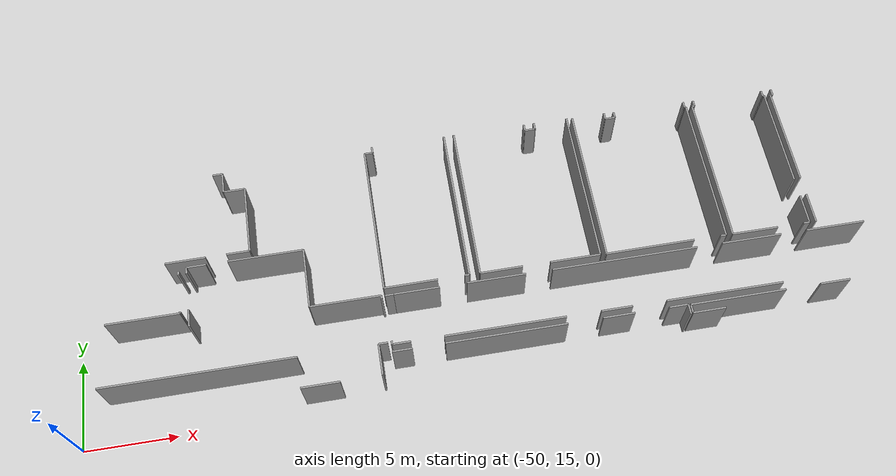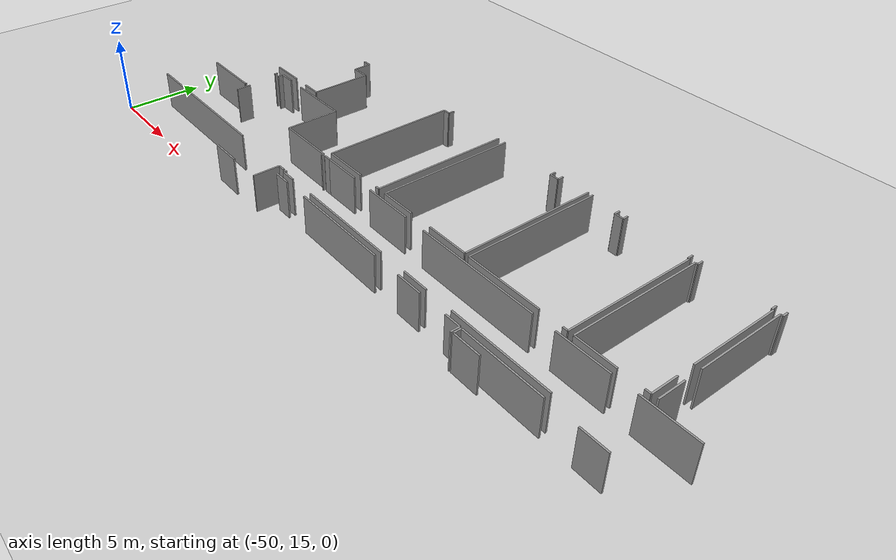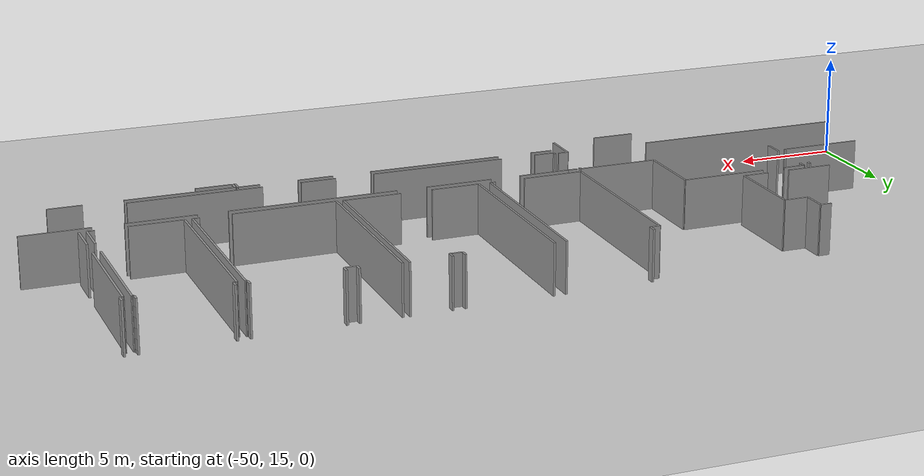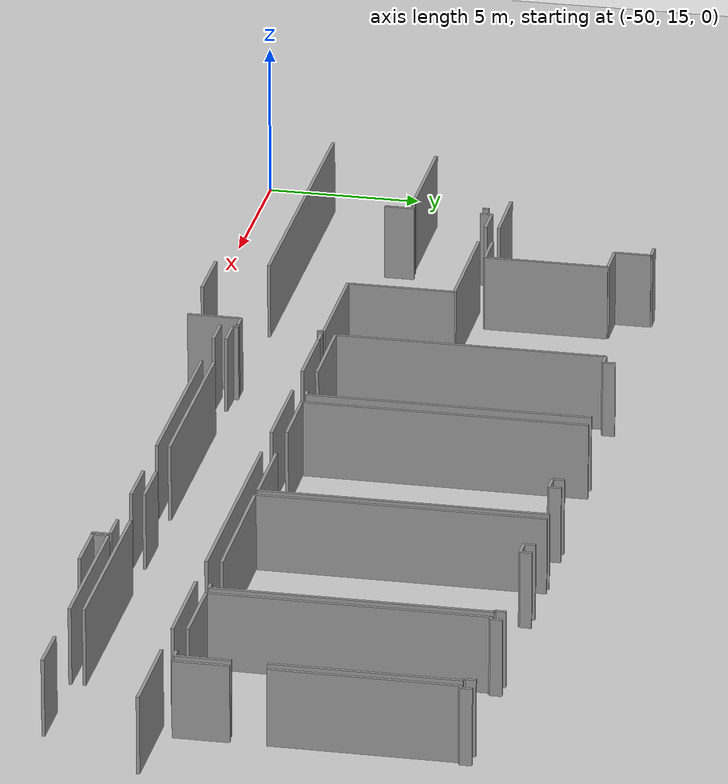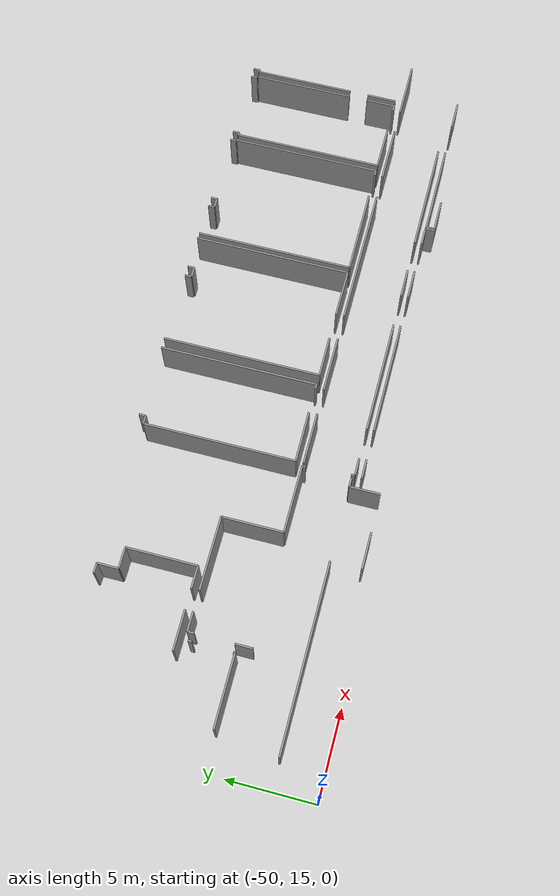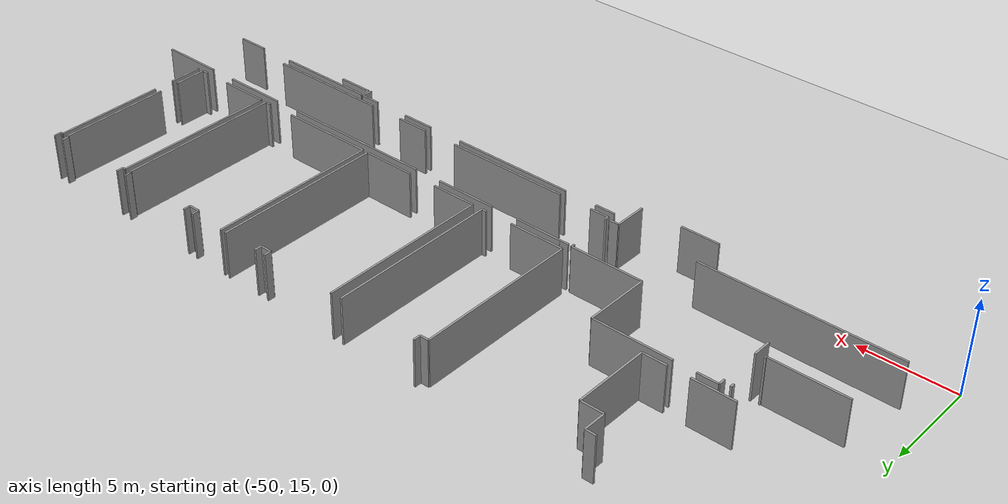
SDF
<sdf version="1.6">
 <world name="default">
  <model name="ground_plane">
   <static>1</static>
   <link name="link">
    <collision name="collision">
     <geometry><plane><normal>0 0 1</normal><size>100 100</size></plane></geometry>
     <surface><friction><ode><mu>100</mu><mu2>50</mu2></ode></friction></surface>
    </collision>
    <visual name="visual">
     <cast_shadows>0</cast_shadows>
     <geometry><plane><normal>0 0 1</normal><size>100 100</size></plane></geometry>
     <material>
      <script><uri>file://media/materials/scripts/gazebo.material</uri><name>Gazebo/Grey</name></script>
     </material>
    </visual>
   </link>
  </model>
  <model name="50010536_PLAN3">
   <static>1</static>
   <link name="Wall_196">
    <collision name="Wall_196_Collision">
     <geometry><box><size>0.553090181887 0.1 2.5</size></box></geometry>
     <pose>0.276545090944 0 1.25 0 0 0</pose>
    </collision>
    <visual name="Wall_196_Visual">
     <pose>0.276545090944 0 1.25 0 0 0</pose>
     <geometry><box><size>0.553090181887 0.1 2.5</size></box></geometry>
     <material>
      <script><uri>file://media/materials/scripts/gazebo.material</uri><name>Gazebo/Grey</name></script>
      <ambient>1 1 1 1</ambient>
     </material>
    </visual>
    <pose>60.6047677999 -0.392089642256 0 0 0 0.0</pose>
   </link>
   <link name="Wall_197">
    <collision name="Wall_197_Collision">
     <geometry><box><size>1.1926229248 0.1 2.5</size></box></geometry>
     <pose>0.5963114624 0 1.25 0 0 0</pose>
    </collision>
    <visual name="Wall_197_Visual">
     <pose>0.5963114624 0 1.25 0 0 0</pose>
     <geometry><box><size>1.1926229248 0.1 2.5</size></box></geometry>
     <material>
      <script><uri>file://media/materials/scripts/gazebo.material</uri><name>Gazebo/Grey</name></script>
      <ambient>1 1 1 1</ambient>
     </material>
    </visual>
    <pose>61.1578579818 -0.392089642256 0 0 0 -1.57079632679</pose>
   </link>
   <link name="Wall_198">
    <collision name="Wall_198_Collision">
     <geometry><box><size>1.19861600482 0.1 2.5</size></box></geometry>
     <pose>0.599308002412 0 1.25 0 0 0</pose>
    </collision>
    <visual name="Wall_198_Visual">
     <pose>0.599308002412 0 1.25 0 0 0</pose>
     <geometry><box><size>1.19861600482 0.1 2.5</size></box></geometry>
     <material>
      <script><uri>file://media/materials/scripts/gazebo.material</uri><name>Gazebo/Grey</name></script>
      <ambient>1 1 1 1</ambient>
     </material>
    </visual>
    <pose>61.1578579818 -1.58471256706 0 0 0 0.0</pose>
   </link>
   <link name="Wall_199">
    <collision name="Wall_199_Collision">
     <geometry><box><size>3.99807002508 0.1 2.5</size></box></geometry>
     <pose>1.99903501254 0 1.25 0 0 0</pose>
    </collision>
    <visual name="Wall_199_Visual">
     <pose>1.99903501254 0 1.25 0 0 0</pose>
     <geometry><box><size>3.99807002508 0.1 2.5</size></box></geometry>
     <material>
      <script><uri>file://media/materials/scripts/gazebo.material</uri><name>Gazebo/Grey</name></script>
      <ambient>1 1 1 1</ambient>
     </material>
    </visual>
    <pose>62.3564739866 -1.58471256706 0 0 0 -1.57079632679</pose>
   </link>
   <link name="Wall_200">
    <collision name="Wall_200_Collision">
     <geometry><box><size>1.2745452814 0.1 2.5</size></box></geometry>
     <pose>0.637272640701 0 1.25 0 0 0</pose>
    </collision>
    <visual name="Wall_200_Visual">
     <pose>0.637272640701 0 1.25 0 0 0</pose>
     <geometry><box><size>1.2745452814 0.1 2.5</size></box></geometry>
     <material>
      <script><uri>file://media/materials/scripts/gazebo.material</uri><name>Gazebo/Grey</name></script>
      <ambient>1 1 1 1</ambient>
     </material>
    </visual>
    <pose>62.3564739866 -5.58278259213 0 0 0 3.14159265359</pose>
   </link>
   <link name="Wall_201">
    <collision name="Wall_201_Collision">
     <geometry><box><size>2.22815080388 0.1 2.5</size></box></geometry>
     <pose>1.11407540194 0 1.25 0 0 0</pose>
    </collision>
    <visual name="Wall_201_Visual">
     <pose>1.11407540194 0 1.25 0 0 0</pose>
     <geometry><box><size>2.22815080388 0.1 2.5</size></box></geometry>
     <material>
      <script><uri>file://media/materials/scripts/gazebo.material</uri><name>Gazebo/Grey</name></script>
      <ambient>1 1 1 1</ambient>
     </material>
    </visual>
    <pose>59.9401961718 -5.58278259213 0 0 0 -3.13519884968</pose>
   </link>
   <link name="Wall_204">
    <collision name="Wall_204_Collision">
     <geometry><box><size>0.209757800844 0.1 2.5</size></box></geometry>
     <pose>0.104878900422 0 1.25 0 0 0</pose>
    </collision>
    <visual name="Wall_204_Visual">
     <pose>0.104878900422 0 1.25 0 0 0</pose>
     <geometry><box><size>0.209757800844 0.1 2.5</size></box></geometry>
     <material>
      <script><uri>file://media/materials/scripts/gazebo.material</uri><name>Gazebo/Grey</name></script>
      <ambient>1 1 1 1</ambient>
     </material>
    </visual>
    <pose>58.4241500809 -6.18942957814 0 0 0 -1.57079632679</pose>
   </link>
   <link name="Wall_205">
    <collision name="Wall_205_Collision">
     <geometry><box><size>0.093959305463 0.1 2.5</size></box></geometry>
     <pose>0.0469796527315 0 1.25 0 0 0</pose>
    </collision>
    <visual name="Wall_205_Visual">
     <pose>0.0469796527315 0 1.25 0 0 0</pose>
     <geometry><box><size>0.093959305463 0.1 2.5</size></box></geometry>
     <material>
      <script><uri>file://media/materials/scripts/gazebo.material</uri><name>Gazebo/Grey</name></script>
      <ambient>1 1 1 1</ambient>
     </material>
    </visual>
    <pose>58.4241500809 -8.60621528108 0 0 0 -1.57079632679</pose>
   </link>
   <link name="Wall_206">
    <collision name="Wall_206_Collision">
     <geometry><box><size>3.99378070356 0.1 2.5</size></box></geometry>
     <pose>1.99689035178 0 1.25 0 0 0</pose>
    </collision>
    <visual name="Wall_206_Visual">
     <pose>1.99689035178 0 1.25 0 0 0</pose>
     <geometry><box><size>3.99378070356 0.1 2.5</size></box></geometry>
     <material>
      <script><uri>file://media/materials/scripts/gazebo.material</uri><name>Gazebo/Grey</name></script>
      <ambient>1 1 1 1</ambient>
     </material>
    </visual>
    <pose>58.4241500809 -8.70017458655 0 0 0 -3.14051171041</pose>
   </link>
   <link name="Wall_208">
    <collision name="Wall_208_Collision">
     <geometry><box><size>0.97387550392 0.1 2.5</size></box></geometry>
     <pose>0.48693775196 0 1.25 0 0 0</pose>
    </collision>
    <visual name="Wall_208_Visual">
     <pose>0.48693775196 0 1.25 0 0 0</pose>
     <geometry><box><size>0.97387550392 0.1 2.5</size></box></geometry>
     <material>
      <script><uri>file://media/materials/scripts/gazebo.material</uri><name>Gazebo/Grey</name></script>
      <ambient>1 1 1 1</ambient>
     </material>
    </visual>
    <pose>58.8649969844 -9.53768212551 0 0 0 1.57079632679</pose>
   </link>
   <link name="Wall_209">
    <collision name="Wall_209_Collision">
     <geometry><box><size>0.373196203536 0.1 2.5</size></box></geometry>
     <pose>0.186598101768 0 1.25 0 0 0</pose>
    </collision>
    <visual name="Wall_209_Visual">
     <pose>0.186598101768 0 1.25 0 0 0</pose>
     <geometry><box><size>0.373196203536 0.1 2.5</size></box></geometry>
     <material>
      <script><uri>file://media/materials/scripts/gazebo.material</uri><name>Gazebo/Grey</name></script>
      <ambient>1 1 1 1</ambient>
     </material>
    </visual>
    <pose>58.8649969844 -6.39385455353 0 0 0 1.57079632679</pose>
   </link>
   <link name="Wall_210">
    <collision name="Wall_210_Collision">
     <geometry><box><size>1.08332539758 0.1 2.5</size></box></geometry>
     <pose>0.541662698791 0 1.25 0 0 0</pose>
    </collision>
    <visual name="Wall_210_Visual">
     <pose>0.541662698791 0 1.25 0 0 0</pose>
     <geometry><box><size>1.08332539758 0.1 2.5</size></box></geometry>
     <material>
      <script><uri>file://media/materials/scripts/gazebo.material</uri><name>Gazebo/Grey</name></script>
      <ambient>1 1 1 1</ambient>
     </material>
    </visual>
    <pose>58.8649969844 -6.02065835 0 0 0 0.0</pose>
   </link>
   <link name="Wall_211">
    <collision name="Wall_211_Collision">
     <geometry><box><size>4.15782623877 0.1 2.5</size></box></geometry>
     <pose>2.07891311939 0 1.25 0 0 0</pose>
    </collision>
    <visual name="Wall_211_Visual">
     <pose>2.07891311939 0 1.25 0 0 0</pose>
     <geometry><box><size>4.15782623877 0.1 2.5</size></box></geometry>
     <material>
      <script><uri>file://media/materials/scripts/gazebo.material</uri><name>Gazebo/Grey</name></script>
      <ambient>1 1 1 1</ambient>
     </material>
    </visual>
    <pose>61.1151953782 -6.02065835 0 0 0 0.0</pose>
   </link>
   <link name="Wall_212">
    <collision name="Wall_212_Collision">
     <geometry><box><size>3.4568390312 0.1 2.5</size></box></geometry>
     <pose>1.7284195156 0 1.25 0 0 0</pose>
    </collision>
    <visual name="Wall_212_Visual">
     <pose>1.7284195156 0 1.25 0 0 0</pose>
     <geometry><box><size>3.4568390312 0.1 2.5</size></box></geometry>
     <material>
      <script><uri>file://media/materials/scripts/gazebo.material</uri><name>Gazebo/Grey</name></script>
      <ambient>1 1 1 1</ambient>
     </material>
    </visual>
    <pose>65.273021617 -6.02065835 0 0 0 -1.57079632679</pose>
   </link>
   <link name="Wall_213">
    <collision name="Wall_213_Collision">
     <geometry><box><size>3.87239310542 0.1 2.5</size></box></geometry>
     <pose>1.93619655271 0 1.25 0 0 0</pose>
    </collision>
    <visual name="Wall_213_Visual">
     <pose>1.93619655271 0 1.25 0 0 0</pose>
     <geometry><box><size>3.87239310542 0.1 2.5</size></box></geometry>
     <material>
      <script><uri>file://media/materials/scripts/gazebo.material</uri><name>Gazebo/Grey</name></script>
      <ambient>1 1 1 1</ambient>
     </material>
    </visual>
    <pose>65.273021617 -9.4774973812 0 0 0 0.0</pose>
   </link>
   <link name="Wall_214">
    <collision name="Wall_214_Collision">
     <geometry><box><size>0.196806653335 0.1 2.5</size></box></geometry>
     <pose>0.0984033266673 0 1.25 0 0 0</pose>
    </collision>
    <visual name="Wall_214_Visual">
     <pose>0.0984033266673 0 1.25 0 0 0</pose>
     <geometry><box><size>0.196806653335 0.1 2.5</size></box></geometry>
     <material>
      <script><uri>file://media/materials/scripts/gazebo.material</uri><name>Gazebo/Grey</name></script>
      <ambient>1 1 1 1</ambient>
     </material>
    </visual>
    <pose>69.1454147224 -9.4774973812 0 0 0 -1.57079632679</pose>
   </link>
   <link name="Wall_215">
    <collision name="Wall_215_Collision">
     <geometry><box><size>0.49442910199 0.1 2.5</size></box></geometry>
     <pose>0.247214550995 0 1.25 0 0 0</pose>
    </collision>
    <visual name="Wall_215_Visual">
     <pose>0.247214550995 0 1.25 0 0 0</pose>
     <geometry><box><size>0.49442910199 0.1 2.5</size></box></geometry>
     <material>
      <script><uri>file://media/materials/scripts/gazebo.material</uri><name>Gazebo/Grey</name></script>
      <ambient>1 1 1 1</ambient>
     </material>
    </visual>
    <pose>69.1454147224 -12.2340602482 0 0 0 3.14159265359</pose>
   </link>
   <link name="Wall_216">
    <collision name="Wall_216_Collision">
     <geometry><box><size>1.73342221376 0.1 2.5</size></box></geometry>
     <pose>0.866711106879 0 1.25 0 0 0</pose>
    </collision>
    <visual name="Wall_216_Visual">
     <pose>0.866711106879 0 1.25 0 0 0</pose>
     <geometry><box><size>1.73342221376 0.1 2.5</size></box></geometry>
     <material>
      <script><uri>file://media/materials/scripts/gazebo.material</uri><name>Gazebo/Grey</name></script>
      <ambient>1 1 1 1</ambient>
     </material>
    </visual>
    <pose>68.6509856204 -12.2340602482 0 0 0 -1.57079632679</pose>
   </link>
   <link name="Wall_217">
    <collision name="Wall_217_Collision">
     <geometry><box><size>2.08157953211 0.1 2.5</size></box></geometry>
     <pose>1.04078976605 0 1.25 0 0 0</pose>
    </collision>
    <visual name="Wall_217_Visual">
     <pose>1.04078976605 0 1.25 0 0 0</pose>
     <geometry><box><size>2.08157953211 0.1 2.5</size></box></geometry>
     <material>
      <script><uri>file://media/materials/scripts/gazebo.material</uri><name>Gazebo/Grey</name></script>
      <ambient>1 1 1 1</ambient>
     </material>
    </visual>
    <pose>66.4454813827 -13.967482462 0 0 0 3.14159265359</pose>
   </link>
   <link name="Wall_219">
    <collision name="Wall_219_Collision">
     <geometry><box><size>10.4142462623 0.1 2.5</size></box></geometry>
     <pose>5.20712313113 0 1.25 0 0 0</pose>
    </collision>
    <visual name="Wall_219_Visual">
     <pose>5.20712313113 0 1.25 0 0 0</pose>
     <geometry><box><size>10.4142462623 0.1 2.5</size></box></geometry>
     <material>
      <script><uri>file://media/materials/scripts/gazebo.material</uri><name>Gazebo/Grey</name></script>
      <ambient>1 1 1 1</ambient>
     </material>
    </visual>
    <pose>64.3639018506 -12.2327905279 0 0 0 3.14159265359</pose>
   </link>
   <link name="Wall_444">
    <collision name="Wall_444_Collision">
     <geometry><box><size>8.65192521347 0.1 2.5</size></box></geometry>
     <pose>4.32596260674 0 1.25 0 0 0</pose>
    </collision>
    <visual name="Wall_444_Visual">
     <pose>4.32596260674 0 1.25 0 0 0</pose>
     <geometry><box><size>8.65192521347 0.1 2.5</size></box></geometry>
     <material>
      <script><uri>file://media/materials/scripts/gazebo.material</uri><name>Gazebo/Grey</name></script>
      <ambient>1 1 1 1</ambient>
     </material>
    </visual>
    <pose>69.3455226486 -9.06661587785 0 0 0 1.57079632679</pose>
   </link>
   <link name="Wall_445">
    <collision name="Wall_445_Collision">
     <geometry><box><size>0.465225534076 0.1 2.5</size></box></geometry>
     <pose>0.232612767038 0 1.25 0 0 0</pose>
    </collision>
    <visual name="Wall_445_Visual">
     <pose>0.232612767038 0 1.25 0 0 0</pose>
     <geometry><box><size>0.465225534076 0.1 2.5</size></box></geometry>
     <material>
      <script><uri>file://media/materials/scripts/gazebo.material</uri><name>Gazebo/Grey</name></script>
      <ambient>1 1 1 1</ambient>
     </material>
    </visual>
    <pose>69.3455226486 -0.414690664381 0 0 0 0.0</pose>
   </link>
   <link name="Wall_446">
    <collision name="Wall_446_Collision">
     <geometry><box><size>0.391175443609 0.1 2.5</size></box></geometry>
     <pose>0.195587721804 0 1.25 0 0 0</pose>
    </collision>
    <visual name="Wall_446_Visual">
     <pose>0.195587721804 0 1.25 0 0 0</pose>
     <geometry><box><size>0.391175443609 0.1 2.5</size></box></geometry>
     <material>
      <script><uri>file://media/materials/scripts/gazebo.material</uri><name>Gazebo/Grey</name></script>
      <ambient>1 1 1 1</ambient>
     </material>
    </visual>
    <pose>69.8107481827 -0.414690664381 0 0 0 1.57079632679</pose>
   </link>
   <link name="Wall_447">
    <collision name="Wall_447_Collision">
     <geometry><box><size>9.02761006888 0.1 2.5</size></box></geometry>
     <pose>4.51380503444 0 1.25 0 0 0</pose>
    </collision>
    <visual name="Wall_447_Visual">
     <pose>4.51380503444 0 1.25 0 0 0</pose>
     <geometry><box><size>9.02761006888 0.1 2.5</size></box></geometry>
     <material>
      <script><uri>file://media/materials/scripts/gazebo.material</uri><name>Gazebo/Grey</name></script>
      <ambient>1 1 1 1</ambient>
     </material>
    </visual>
    <pose>74.0386629845 -0.0235152207726 0 0 0 -1.57079632679</pose>
   </link>
   <link name="Wall_448">
    <collision name="Wall_448_Collision">
     <geometry><box><size>0.255467733232 0.1 2.5</size></box></geometry>
     <pose>0.127733866616 0 1.25 0 0 0</pose>
    </collision>
    <visual name="Wall_448_Visual">
     <pose>0.127733866616 0 1.25 0 0 0</pose>
     <geometry><box><size>0.255467733232 0.1 2.5</size></box></geometry>
     <material>
      <script><uri>file://media/materials/scripts/gazebo.material</uri><name>Gazebo/Grey</name></script>
      <ambient>1 1 1 1</ambient>
     </material>
    </visual>
    <pose>74.0386629845 -9.05112528965 0 0 0 3.14159265359</pose>
   </link>
   <link name="Wall_449">
    <collision name="Wall_449_Collision">
     <geometry><box><size>2.95188650114 0.1 2.5</size></box></geometry>
     <pose>1.47594325057 0 1.25 0 0 0</pose>
    </collision>
    <visual name="Wall_449_Visual">
     <pose>1.47594325057 0 1.25 0 0 0</pose>
     <geometry><box><size>2.95188650114 0.1 2.5</size></box></geometry>
     <material>
      <script><uri>file://media/materials/scripts/gazebo.material</uri><name>Gazebo/Grey</name></script>
      <ambient>1 1 1 1</ambient>
     </material>
    </visual>
    <pose>72.2973685046 -9.05112528965 0 0 0 -3.13634493851</pose>
   </link>
   <link name="Wall_450">
    <collision name="Wall_450_Collision">
     <geometry><box><size>9.05209027712 0.1 2.5</size></box></geometry>
     <pose>4.52604513856 0 1.25 0 0 0</pose>
    </collision>
    <visual name="Wall_450_Visual">
     <pose>4.52604513856 0 1.25 0 0 0</pose>
     <geometry><box><size>9.05209027712 0.1 2.5</size></box></geometry>
     <material>
      <script><uri>file://media/materials/scripts/gazebo.material</uri><name>Gazebo/Grey</name></script>
      <ambient>1 1 1 1</ambient>
     </material>
    </visual>
    <pose>74.6252737834 -9.06356854903 0 0 0 1.57079632679</pose>
   </link>
   <link name="Wall_451">
    <collision name="Wall_451_Collision">
     <geometry><box><size>0.380611370346 0.1 2.5</size></box></geometry>
     <pose>0.190305685173 0 1.25 0 0 0</pose>
    </collision>
    <visual name="Wall_451_Visual">
     <pose>0.190305685173 0 1.25 0 0 0</pose>
     <geometry><box><size>0.380611370346 0.1 2.5</size></box></geometry>
     <material>
      <script><uri>file://media/materials/scripts/gazebo.material</uri><name>Gazebo/Grey</name></script>
      <ambient>1 1 1 1</ambient>
     </material>
    </visual>
    <pose>78.789702568 -0.0114782719106 0 0 0 -1.57079632679</pose>
   </link>
   <link name="Wall_452">
    <collision name="Wall_452_Collision">
     <geometry><box><size>0.598292226137 0.1 2.5</size></box></geometry>
     <pose>0.299146113069 0 1.25 0 0 0</pose>
    </collision>
    <visual name="Wall_452_Visual">
     <pose>0.299146113069 0 1.25 0 0 0</pose>
     <geometry><box><size>0.598292226137 0.1 2.5</size></box></geometry>
     <material>
      <script><uri>file://media/materials/scripts/gazebo.material</uri><name>Gazebo/Grey</name></script>
      <ambient>1 1 1 1</ambient>
     </material>
    </visual>
    <pose>78.789702568 -0.392089642256 0 0 0 0.0</pose>
   </link>
   <link name="Wall_453">
    <collision name="Wall_453_Collision">
     <geometry><box><size>0.387975748341 0.1 2.5</size></box></geometry>
     <pose>0.193987874171 0 1.25 0 0 0</pose>
    </collision>
    <visual name="Wall_453_Visual">
     <pose>0.193987874171 0 1.25 0 0 0</pose>
     <geometry><box><size>0.387975748341 0.1 2.5</size></box></geometry>
     <material>
      <script><uri>file://media/materials/scripts/gazebo.material</uri><name>Gazebo/Grey</name></script>
      <ambient>1 1 1 1</ambient>
     </material>
    </visual>
    <pose>79.3879947941 -0.392089642256 0 0 0 1.57079632679</pose>
   </link>
   <link name="Wall_454">
    <collision name="Wall_454_Collision">
     <geometry><box><size>9.04701139574 0.1 2.5</size></box></geometry>
     <pose>4.52350569787 0 1.25 0 0 0</pose>
    </collision>
    <visual name="Wall_454_Visual">
     <pose>4.52350569787 0 1.25 0 0 0</pose>
     <geometry><box><size>9.04701139574 0.1 2.5</size></box></geometry>
     <material>
      <script><uri>file://media/materials/scripts/gazebo.material</uri><name>Gazebo/Grey</name></script>
      <ambient>1 1 1 1</ambient>
     </material>
    </visual>
    <pose>81.350474558 -0.00411389391486 0 0 0 -1.57079632679</pose>
   </link>
   <link name="Wall_455">
    <collision name="Wall_455_Collision">
     <geometry><box><size>2.80633590452 0.1 2.5</size></box></geometry>
     <pose>1.40316795226 0 1.25 0 0 0</pose>
    </collision>
    <visual name="Wall_455_Visual">
     <pose>1.40316795226 0 1.25 0 0 0</pose>
     <geometry><box><size>2.80633590452 0.1 2.5</size></box></geometry>
     <material>
      <script><uri>file://media/materials/scripts/gazebo.material</uri><name>Gazebo/Grey</name></script>
      <ambient>1 1 1 1</ambient>
     </material>
    </visual>
    <pose>81.350474558 -9.05112528965 0 0 0 3.14159265359</pose>
   </link>
   <link name="Wall_456">
    <collision name="Wall_456_Collision">
     <geometry><box><size>2.364759907 0.1 2.5</size></box></geometry>
     <pose>1.1823799535 0 1.25 0 0 0</pose>
    </collision>
    <visual name="Wall_456_Visual">
     <pose>1.1823799535 0 1.25 0 0 0</pose>
     <geometry><box><size>2.364759907 0.1 2.5</size></box></geometry>
     <material>
      <script><uri>file://media/materials/scripts/gazebo.material</uri><name>Gazebo/Grey</name></script>
      <ambient>1 1 1 1</ambient>
     </material>
    </visual>
    <pose>76.9900009523 -9.05112528965 0 0 0 -3.13633067466</pose>
   </link>
   <link name="Wall_457">
    <collision name="Wall_457_Collision">
     <geometry><box><size>9.04904294829 0.1 2.5</size></box></geometry>
     <pose>4.52452147415 0 1.25 0 0 0</pose>
    </collision>
    <visual name="Wall_457_Visual">
     <pose>4.52452147415 0 1.25 0 0 0</pose>
     <geometry><box><size>9.04904294829 0.1 2.5</size></box></geometry>
     <material>
      <script><uri>file://media/materials/scripts/gazebo.material</uri><name>Gazebo/Grey</name></script>
      <ambient>1 1 1 1</ambient>
     </material>
    </visual>
    <pose>81.686188617 -9.07144081516 0 0 0 1.57079632679</pose>
   </link>
   <link name="Wall_458">
    <collision name="Wall_458_Collision">
     <geometry><box><size>0.371164650986 0.1 2.5</size></box></geometry>
     <pose>0.185582325493 0 1.25 0 0 0</pose>
    </collision>
    <visual name="Wall_458_Visual">
     <pose>0.185582325493 0 1.25 0 0 0</pose>
     <geometry><box><size>0.371164650986 0.1 2.5</size></box></geometry>
     <material>
      <script><uri>file://media/materials/scripts/gazebo.material</uri><name>Gazebo/Grey</name></script>
      <ambient>1 1 1 1</ambient>
     </material>
    </visual>
    <pose>83.6054978891 -0.0223978668698 0 0 0 -1.57079632679</pose>
   </link>
   <link name="Wall_459">
    <collision name="Wall_459_Collision">
     <geometry><box><size>0.578738532838 0.1 2.5</size></box></geometry>
     <pose>0.289369266419 0 1.25 0 0 0</pose>
    </collision>
    <visual name="Wall_459_Visual">
     <pose>0.289369266419 0 1.25 0 0 0</pose>
     <geometry><box><size>0.578738532838 0.1 2.5</size></box></geometry>
     <material>
      <script><uri>file://media/materials/scripts/gazebo.material</uri><name>Gazebo/Grey</name></script>
      <ambient>1 1 1 1</ambient>
     </material>
    </visual>
    <pose>83.6054978891 -0.393562517855 0 0 0 0.0</pose>
   </link>
   <link name="Wall_460">
    <collision name="Wall_460_Collision">
     <geometry><box><size>0.365704853506 0.1 2.5</size></box></geometry>
     <pose>0.182852426753 0 1.25 0 0 0</pose>
    </collision>
    <visual name="Wall_460_Visual">
     <pose>0.182852426753 0 1.25 0 0 0</pose>
     <geometry><box><size>0.365704853506 0.1 2.5</size></box></geometry>
     <material>
      <script><uri>file://media/materials/scripts/gazebo.material</uri><name>Gazebo/Grey</name></script>
      <ambient>1 1 1 1</ambient>
     </material>
    </visual>
    <pose>84.1842364219 -0.393562517855 0 0 0 1.57079632679</pose>
   </link>
   <link name="Wall_461">
    <collision name="Wall_461_Collision">
     <geometry><box><size>0.350950703108 0.1 2.5</size></box></geometry>
     <pose>0.175475351554 0 1.25 0 0 0</pose>
    </collision>
    <visual name="Wall_461_Visual">
     <pose>0.175475351554 0 1.25 0 0 0</pose>
     <geometry><box><size>0.350950703108 0.1 2.5</size></box></geometry>
     <material>
      <script><uri>file://media/materials/scripts/gazebo.material</uri><name>Gazebo/Grey</name></script>
      <ambient>1 1 1 1</ambient>
     </material>
    </visual>
    <pose>88.4159603847 -0.0278576643494 0 0 0 -1.57079632679</pose>
   </link>
   <link name="Wall_462">
    <collision name="Wall_462_Collision">
     <geometry><box><size>0.0825318223661 0.1 2.5</size></box></geometry>
     <pose>0.0412659111831 0 1.25 0 0 0</pose>
    </collision>
    <visual name="Wall_462_Visual">
     <pose>0.0412659111831 0 1.25 0 0 0</pose>
     <geometry><box><size>0.0825318223661 0.1 2.5</size></box></geometry>
     <material>
      <script><uri>file://media/materials/scripts/gazebo.material</uri><name>Gazebo/Grey</name></script>
      <ambient>1 1 1 1</ambient>
     </material>
    </visual>
    <pose>88.4159603847 -0.378808367457 0 0 0 0.0</pose>
   </link>
   <link name="Wall_463">
    <collision name="Wall_463_Collision">
     <geometry><box><size>8.67104720185 0.1 2.5</size></box></geometry>
     <pose>4.33552360093 0 1.25 0 0 0</pose>
    </collision>
    <visual name="Wall_463_Visual">
     <pose>4.33552360093 0 1.25 0 0 0</pose>
     <geometry><box><size>8.67104720185 0.1 2.5</size></box></geometry>
     <material>
      <script><uri>file://media/materials/scripts/gazebo.material</uri><name>Gazebo/Grey</name></script>
      <ambient>1 1 1 1</ambient>
     </material>
    </visual>
    <pose>88.4984922071 -0.378808367457 0 0 0 -1.57079632679</pose>
   </link>
   <link name="Wall_464">
    <collision name="Wall_464_Collision">
     <geometry><box><size>0.319461638574 0.1 2.5</size></box></geometry>
     <pose>0.159730819287 0 1.25 0 0 0</pose>
    </collision>
    <visual name="Wall_464_Visual">
     <pose>0.159730819287 0 1.25 0 0 0</pose>
     <geometry><box><size>0.319461638574 0.1 2.5</size></box></geometry>
     <material>
      <script><uri>file://media/materials/scripts/gazebo.material</uri><name>Gazebo/Grey</name></script>
      <ambient>1 1 1 1</ambient>
     </material>
    </visual>
    <pose>88.4984922071 -9.04985556931 0 0 0 3.14159265359</pose>
   </link>
   <link name="Wall_465">
    <collision name="Wall_465_Collision">
     <geometry><box><size>4.97912814514 0.1 2.5</size></box></geometry>
     <pose>2.48956407257 0 1.25 0 0 0</pose>
    </collision>
    <visual name="Wall_465_Visual">
     <pose>2.48956407257 0 1.25 0 0 0</pose>
     <geometry><box><size>4.97912814514 0.1 2.5</size></box></geometry>
     <material>
      <script><uri>file://media/materials/scripts/gazebo.material</uri><name>Gazebo/Grey</name></script>
      <ambient>1 1 1 1</ambient>
     </material>
    </visual>
    <pose>86.6652699743 -9.04985556931 0 0 0 -3.13725749433</pose>
   </link>
   <link name="Wall_466">
    <collision name="Wall_466_Collision">
     <geometry><box><size>8.6619813986 0.1 2.5</size></box></geometry>
     <pose>4.3309906993 0 1.25 0 0 0</pose>
    </collision>
    <visual name="Wall_466_Visual">
     <pose>4.3309906993 0 1.25 0 0 0</pose>
     <geometry><box><size>8.6619813986 0.1 2.5</size></box></geometry>
     <material>
      <script><uri>file://media/materials/scripts/gazebo.material</uri><name>Gazebo/Grey</name></script>
      <ambient>1 1 1 1</ambient>
     </material>
    </visual>
    <pose>88.8682347713 -9.05696600324 0 0 0 1.57079632679</pose>
   </link>
   <link name="Wall_467">
    <collision name="Wall_467_Collision">
     <geometry><box><size>0.151096720947 0.1 2.5</size></box></geometry>
     <pose>0.0755483604736 0 1.25 0 0 0</pose>
    </collision>
    <visual name="Wall_467_Visual">
     <pose>0.0755483604736 0 1.25 0 0 0</pose>
     <geometry><box><size>0.151096720947 0.1 2.5</size></box></geometry>
     <material>
      <script><uri>file://media/materials/scripts/gazebo.material</uri><name>Gazebo/Grey</name></script>
      <ambient>1 1 1 1</ambient>
     </material>
    </visual>
    <pose>88.8682347713 -0.394984604641 0 0 0 0.0</pose>
   </link>
   <link name="Wall_468">
    <collision name="Wall_468_Collision">
     <geometry><box><size>0.365476303844 0.1 2.5</size></box></geometry>
     <pose>0.182738151922 0 1.25 0 0 0</pose>
    </collision>
    <visual name="Wall_468_Visual">
     <pose>0.182738151922 0 1.25 0 0 0</pose>
     <geometry><box><size>0.365476303844 0.1 2.5</size></box></geometry>
     <material>
      <script><uri>file://media/materials/scripts/gazebo.material</uri><name>Gazebo/Grey</name></script>
      <ambient>1 1 1 1</ambient>
     </material>
    </visual>
    <pose>89.0193314922 -0.394984604641 0 0 0 1.57079632679</pose>
   </link>
   <link name="Wall_469">
    <collision name="Wall_469_Collision">
     <geometry><box><size>0.358442053138 0.1 2.5</size></box></geometry>
     <pose>0.179221026569 0 1.25 0 0 0</pose>
    </collision>
    <visual name="Wall_469_Visual">
     <pose>0.179221026569 0 1.25 0 0 0</pose>
     <geometry><box><size>0.358442053138 0.1 2.5</size></box></geometry>
     <material>
      <script><uri>file://media/materials/scripts/gazebo.material</uri><name>Gazebo/Grey</name></script>
      <ambient>1 1 1 1</ambient>
     </material>
    </visual>
    <pose>93.2144875091 -0.0295083007967 0 0 0 -1.57079632679</pose>
   </link>
   <link name="Wall_470">
    <collision name="Wall_470_Collision">
     <geometry><box><size>0.0949750817382 0.1 2.5</size></box></geometry>
     <pose>0.0474875408691 0 1.25 0 0 0</pose>
    </collision>
    <visual name="Wall_470_Visual">
     <pose>0.0474875408691 0 1.25 0 0 0</pose>
     <geometry><box><size>0.0949750817382 0.1 2.5</size></box></geometry>
     <material>
      <script><uri>file://media/materials/scripts/gazebo.material</uri><name>Gazebo/Grey</name></script>
      <ambient>1 1 1 1</ambient>
     </material>
    </visual>
    <pose>93.2144875091 -0.387950353935 0 0 0 0.0</pose>
   </link>
   <link name="Wall_471">
    <collision name="Wall_471_Collision">
     <geometry><box><size>5.86267974479 0.1 2.5</size></box></geometry>
     <pose>2.93133987239 0 1.25 0 0 0</pose>
    </collision>
    <visual name="Wall_471_Visual">
     <pose>2.93133987239 0 1.25 0 0 0</pose>
     <geometry><box><size>5.86267974479 0.1 2.5</size></box></geometry>
     <material>
      <script><uri>file://media/materials/scripts/gazebo.material</uri><name>Gazebo/Grey</name></script>
      <ambient>1 1 1 1</ambient>
     </material>
    </visual>
    <pose>93.3094625909 -0.387950353935 0 0 0 -1.57079632679</pose>
   </link>
   <link name="Wall_472">
    <collision name="Wall_472_Collision">
     <geometry><box><size>1.72301050694 0.1 2.5</size></box></geometry>
     <pose>0.861505253468 0 1.25 0 0 0</pose>
    </collision>
    <visual name="Wall_472_Visual">
     <pose>0.861505253468 0 1.25 0 0 0</pose>
     <geometry><box><size>1.72301050694 0.1 2.5</size></box></geometry>
     <material>
      <script><uri>file://media/materials/scripts/gazebo.material</uri><name>Gazebo/Grey</name></script>
      <ambient>1 1 1 1</ambient>
     </material>
    </visual>
    <pose>93.3094625909 -7.34360537092 0 0 0 -1.57079632679</pose>
   </link>
   <link name="Wall_473">
    <collision name="Wall_473_Collision">
     <geometry><box><size>0.345871821731 0.1 2.5</size></box></geometry>
     <pose>0.172935910866 0 1.25 0 0 0</pose>
    </collision>
    <visual name="Wall_473_Visual">
     <pose>0.172935910866 0 1.25 0 0 0</pose>
     <geometry><box><size>0.345871821731 0.1 2.5</size></box></geometry>
     <material>
      <script><uri>file://media/materials/scripts/gazebo.material</uri><name>Gazebo/Grey</name></script>
      <ambient>1 1 1 1</ambient>
     </material>
    </visual>
    <pose>93.3094625909 -9.06661587785 0 0 0 3.14159265359</pose>
   </link>
   <link name="Wall_474">
    <collision name="Wall_474_Collision">
     <geometry><box><size>2.5920250733 0.1 2.5</size></box></geometry>
     <pose>1.29601253665 0 1.25 0 0 0</pose>
    </collision>
    <visual name="Wall_474_Visual">
     <pose>1.29601253665 0 1.25 0 0 0</pose>
     <geometry><box><size>2.5920250733 0.1 2.5</size></box></geometry>
     <material>
      <script><uri>file://media/materials/scripts/gazebo.material</uri><name>Gazebo/Grey</name></script>
      <ambient>1 1 1 1</ambient>
     </material>
    </visual>
    <pose>91.4602418817 -9.06661587785 0 0 0 3.13786973555</pose>
   </link>
   <link name="Wall_475">
    <collision name="Wall_475_Collision">
     <geometry><box><size>1.75069041044 0.1 2.5</size></box></geometry>
     <pose>0.875345205219 0 1.25 0 0 0</pose>
    </collision>
    <visual name="Wall_475_Visual">
     <pose>0.875345205219 0 1.25 0 0 0</pose>
     <geometry><box><size>1.75069041044 0.1 2.5</size></box></geometry>
     <material>
      <script><uri>file://media/materials/scripts/gazebo.material</uri><name>Gazebo/Grey</name></script>
      <ambient>1 1 1 1</ambient>
     </material>
    </visual>
    <pose>93.6746341618 -9.06356854903 0 0 0 1.57079632679</pose>
   </link>
   <link name="Wall_476">
    <collision name="Wall_476_Collision">
     <geometry><box><size>5.79972701013 0.1 2.5</size></box></geometry>
     <pose>2.89986350506 0 1.25 0 0 0</pose>
    </collision>
    <visual name="Wall_476_Visual">
     <pose>2.89986350506 0 1.25 0 0 0</pose>
     <geometry><box><size>5.79972701013 0.1 2.5</size></box></geometry>
     <material>
      <script><uri>file://media/materials/scripts/gazebo.material</uri><name>Gazebo/Grey</name></script>
      <ambient>1 1 1 1</ambient>
     </material>
    </visual>
    <pose>93.6746341618 -6.20365044599 0 0 0 1.57079632679</pose>
   </link>
   <link name="Wall_477">
    <collision name="Wall_477_Collision">
     <geometry><box><size>0.139161349713 0.1 2.5</size></box></geometry>
     <pose>0.0695806748564 0 1.25 0 0 0</pose>
    </collision>
    <visual name="Wall_477_Visual">
     <pose>0.0695806748564 0 1.25 0 0 0</pose>
     <geometry><box><size>0.139161349713 0.1 2.5</size></box></geometry>
     <material>
      <script><uri>file://media/materials/scripts/gazebo.material</uri><name>Gazebo/Grey</name></script>
      <ambient>1 1 1 1</ambient>
     </material>
    </visual>
    <pose>93.6746341618 -0.403923435863 0 0 0 0.0</pose>
   </link>
   <link name="Wall_478">
    <collision name="Wall_478_Collision">
     <geometry><box><size>0.37682760372 0.1 2.5</size></box></geometry>
     <pose>0.18841380186 0 1.25 0 0 0</pose>
    </collision>
    <visual name="Wall_478_Visual">
     <pose>0.18841380186 0 1.25 0 0 0</pose>
     <geometry><box><size>0.37682760372 0.1 2.5</size></box></geometry>
     <material>
      <script><uri>file://media/materials/scripts/gazebo.material</uri><name>Gazebo/Grey</name></script>
      <ambient>1 1 1 1</ambient>
     </material>
    </visual>
    <pose>93.8137955115 -0.403923435863 0 0 0 1.57079632679</pose>
   </link>
   <link name="Wall_591">
    <collision name="Wall_591_Collision">
     <geometry><box><size>2.51201472876 0.1 2.5</size></box></geometry>
     <pose>1.25600736438 0 1.25 0 0 0</pose>
    </collision>
    <visual name="Wall_591_Visual">
     <pose>1.25600736438 0 1.25 0 0 0</pose>
     <geometry><box><size>2.51201472876 0.1 2.5</size></box></geometry>
     <material>
      <script><uri>file://media/materials/scripts/gazebo.material</uri><name>Gazebo/Grey</name></script>
      <ambient>1 1 1 1</ambient>
     </material>
    </visual>
    <pose>69.8168428404 -9.51355743897 0 0 0 0.0</pose>
   </link>
   <link name="Wall_592">
    <collision name="Wall_592_Collision">
     <geometry><box><size>3.2560708504 0.1 2.5</size></box></geometry>
     <pose>1.6280354252 0 1.25 0 0 0</pose>
    </collision>
    <visual name="Wall_592_Visual">
     <pose>1.6280354252 0 1.25 0 0 0</pose>
     <geometry><box><size>3.2560708504 0.1 2.5</size></box></geometry>
     <material>
      <script><uri>file://media/materials/scripts/gazebo.material</uri><name>Gazebo/Grey</name></script>
      <ambient>1 1 1 1</ambient>
     </material>
    </visual>
    <pose>73.8261117989 -9.51355743897 0 0 0 0.0</pose>
   </link>
   <link name="Wall_593">
    <collision name="Wall_593_Collision">
     <geometry><box><size>8.13966923785 0.1 2.5</size></box></geometry>
     <pose>4.06983461893 0 1.25 0 0 0</pose>
    </collision>
    <visual name="Wall_593_Visual">
     <pose>4.06983461893 0 1.25 0 0 0</pose>
     <geometry><box><size>8.13966923785 0.1 2.5</size></box></geometry>
     <material>
      <script><uri>file://media/materials/scripts/gazebo.material</uri><name>Gazebo/Grey</name></script>
      <ambient>1 1 1 1</ambient>
     </material>
    </visual>
    <pose>78.5730882773 -9.51355743897 0 0 0 0.0</pose>
   </link>
   <link name="Wall_594">
    <collision name="Wall_594_Collision">
     <geometry><box><size>3.36450496778 0.1 2.5</size></box></geometry>
     <pose>1.68225248389 0 1.25 0 0 0</pose>
    </collision>
    <visual name="Wall_594_Visual">
     <pose>1.68225248389 0 1.25 0 0 0</pose>
     <geometry><box><size>3.36450496778 0.1 2.5</size></box></geometry>
     <material>
      <script><uri>file://media/materials/scripts/gazebo.material</uri><name>Gazebo/Grey</name></script>
      <ambient>1 1 1 1</ambient>
     </material>
    </visual>
    <pose>88.1541440498 -9.51355743897 0 0 0 0.0</pose>
   </link>
   <link name="Wall_595">
    <collision name="Wall_595_Collision">
     <geometry><box><size>3.31600165064 0.1 2.5</size></box></geometry>
     <pose>1.65800082532 0 1.25 0 0 0</pose>
    </collision>
    <visual name="Wall_595_Visual">
     <pose>1.65800082532 0 1.25 0 0 0</pose>
     <geometry><box><size>3.31600165064 0.1 2.5</size></box></geometry>
     <material>
      <script><uri>file://media/materials/scripts/gazebo.material</uri><name>Gazebo/Grey</name></script>
      <ambient>1 1 1 1</ambient>
     </material>
    </visual>
    <pose>92.9920325048 -9.51355743897 0 0 0 0.0</pose>
   </link>
   <link name="Wall_616">
    <collision name="Wall_616_Collision">
     <geometry><box><size>6.49588928039 0.1 2.5</size></box></geometry>
     <pose>3.24794464019 0 1.25 0 0 0</pose>
    </collision>
    <visual name="Wall_616_Visual">
     <pose>3.24794464019 0 1.25 0 0 0</pose>
     <geometry><box><size>6.49588928039 0.1 2.5</size></box></geometry>
     <material>
      <script><uri>file://media/materials/scripts/gazebo.material</uri><name>Gazebo/Grey</name></script>
      <ambient>1 1 1 1</ambient>
     </material>
    </visual>
    <pose>90.7504682094 -12.3722058217 0 0 0 3.14159265359</pose>
   </link>
   <link name="Wall_617">
    <collision name="Wall_617_Collision">
     <geometry><box><size>1.72681966797 0.1 2.5</size></box></geometry>
     <pose>0.863409833984 0 1.25 0 0 0</pose>
    </collision>
    <visual name="Wall_617_Visual">
     <pose>0.863409833984 0 1.25 0 0 0</pose>
     <geometry><box><size>1.72681966797 0.1 2.5</size></box></geometry>
     <material>
      <script><uri>file://media/materials/scripts/gazebo.material</uri><name>Gazebo/Grey</name></script>
      <ambient>1 1 1 1</ambient>
     </material>
    </visual>
    <pose>82.3687902739 -12.3722058217 0 0 0 3.14159265359</pose>
   </link>
   <link name="Wall_618">
    <collision name="Wall_618_Collision">
     <geometry><box><size>6.60381550963 0.1 2.5</size></box></geometry>
     <pose>3.30190775482 0 1.25 0 0 0</pose>
    </collision>
    <visual name="Wall_618_Visual">
     <pose>3.30190775482 0 1.25 0 0 0</pose>
     <geometry><box><size>6.60381550963 0.1 2.5</size></box></geometry>
     <material>
      <script><uri>file://media/materials/scripts/gazebo.material</uri><name>Gazebo/Grey</name></script>
      <ambient>1 1 1 1</ambient>
     </material>
    </visual>
    <pose>78.7401834746 -12.3722058217 0 0 0 3.14159265359</pose>
   </link>
   <link name="Wall_619">
    <collision name="Wall_619_Collision">
     <geometry><box><size>1.00587245659 0.1 2.5</size></box></geometry>
     <pose>0.502936228296 0 1.25 0 0 0</pose>
    </collision>
    <visual name="Wall_619_Visual">
     <pose>0.502936228296 0 1.25 0 0 0</pose>
     <geometry><box><size>1.00587245659 0.1 2.5</size></box></geometry>
     <material>
      <script><uri>file://media/materials/scripts/gazebo.material</uri><name>Gazebo/Grey</name></script>
      <ambient>1 1 1 1</ambient>
     </material>
    </visual>
    <pose>70.3564739866 -12.3722058217 0 0 0 3.14159265359</pose>
   </link>
   <link name="Wall_620">
    <collision name="Wall_620_Collision">
     <geometry><box><size>0.200869758436 0.1 2.5</size></box></geometry>
     <pose>0.100434879218 0 1.25 0 0 0</pose>
    </collision>
    <visual name="Wall_620_Visual">
     <pose>0.100434879218 0 1.25 0 0 0</pose>
     <geometry><box><size>0.200869758436 0.1 2.5</size></box></geometry>
     <material>
      <script><uri>file://media/materials/scripts/gazebo.material</uri><name>Gazebo/Grey</name></script>
      <ambient>1 1 1 1</ambient>
     </material>
    </visual>
    <pose>69.35060153 -12.3722058217 0 0 0 1.57079632679</pose>
   </link>
   <link name="Wall_621">
    <collision name="Wall_621_Collision">
     <geometry><box><size>0.466274781081 0.1 2.5</size></box></geometry>
     <pose>0.23313739054 0 1.25 0 0 0</pose>
    </collision>
    <visual name="Wall_621_Visual">
     <pose>0.23313739054 0 1.25 0 0 0</pose>
     <geometry><box><size>0.466274781081 0.1 2.5</size></box></geometry>
     <material>
      <script><uri>file://media/materials/scripts/gazebo.material</uri><name>Gazebo/Grey</name></script>
      <ambient>1 1 1 1</ambient>
     </material>
    </visual>
    <pose>69.35060153 -9.51914420849 0 0 0 0.0119819973617</pose>
   </link>
   <link name="Wall_629">
    <collision name="Wall_629_Collision">
     <geometry><box><size>1.08408722979 0.1 2.5</size></box></geometry>
     <pose>0.542043614894 0 1.25 0 0 0</pose>
    </collision>
    <visual name="Wall_629_Visual">
     <pose>0.542043614894 0 1.25 0 0 0</pose>
     <geometry><box><size>1.08408722979 0.1 2.5</size></box></geometry>
     <material>
      <script><uri>file://media/materials/scripts/gazebo.material</uri><name>Gazebo/Grey</name></script>
      <ambient>1 1 1 1</ambient>
     </material>
    </visual>
    <pose>69.2993048281 -12.7731835063 0 0 0 0.0</pose>
   </link>
   <link name="Wall_630">
    <collision name="Wall_630_Collision">
     <geometry><box><size>6.60305367743 0.1 2.5</size></box></geometry>
     <pose>3.30152683871 0 1.25 0 0 0</pose>
    </collision>
    <visual name="Wall_630_Visual">
     <pose>3.30152683871 0 1.25 0 0 0</pose>
     <geometry><box><size>6.60305367743 0.1 2.5</size></box></geometry>
     <material>
      <script><uri>file://media/materials/scripts/gazebo.material</uri><name>Gazebo/Grey</name></script>
      <ambient>1 1 1 1</ambient>
     </material>
    </visual>
    <pose>72.1432244548 -12.7731835063 0 0 0 0.0</pose>
   </link>
   <link name="Wall_631">
    <collision name="Wall_631_Collision">
     <geometry><box><size>1.73951687141 0.1 2.5</size></box></geometry>
     <pose>0.869758435705 0 1.25 0 0 0</pose>
    </collision>
    <visual name="Wall_631_Visual">
     <pose>0.869758435705 0 1.25 0 0 0</pose>
     <geometry><box><size>1.73951687141 0.1 2.5</size></box></geometry>
     <material>
      <script><uri>file://media/materials/scripts/gazebo.material</uri><name>Gazebo/Grey</name></script>
      <ambient>1 1 1 1</ambient>
     </material>
    </visual>
    <pose>80.6592388027 -12.7731835063 0 0 0 0.0</pose>
   </link>
   <link name="Wall_632">
    <collision name="Wall_632_Collision">
     <geometry><box><size>1.04802717202 0.1 2.5</size></box></geometry>
     <pose>0.524013586008 0 1.25 0 0 0</pose>
    </collision>
    <visual name="Wall_632_Visual">
     <pose>0.524013586008 0 1.25 0 0 0</pose>
     <geometry><box><size>1.04802717202 0.1 2.5</size></box></geometry>
     <material>
      <script><uri>file://media/materials/scripts/gazebo.material</uri><name>Gazebo/Grey</name></script>
      <ambient>1 1 1 1</ambient>
     </material>
    </visual>
    <pose>84.287845602 -12.7731835063 0 0 0 0.0</pose>
   </link>
   <link name="Wall_633">
    <collision name="Wall_633_Collision">
     <geometry><box><size>0.578484588769 0.1 2.5</size></box></geometry>
     <pose>0.289242294385 0 1.25 0 0 0</pose>
    </collision>
    <visual name="Wall_633_Visual">
     <pose>0.289242294385 0 1.25 0 0 0</pose>
     <geometry><box><size>0.578484588769 0.1 2.5</size></box></geometry>
     <material>
      <script><uri>file://media/materials/scripts/gazebo.material</uri><name>Gazebo/Grey</name></script>
      <ambient>1 1 1 1</ambient>
     </material>
    </visual>
    <pose>85.335872774 -12.7731835063 0 0 0 -1.57079632679</pose>
   </link>
   <link name="Wall_639">
    <collision name="Wall_639_Collision">
     <geometry><box><size>1.8210329175 0.1 2.5</size></box></geometry>
     <pose>0.91051645875 0 1.25 0 0 0</pose>
    </collision>
    <visual name="Wall_639_Visual">
     <pose>0.91051645875 0 1.25 0 0 0</pose>
     <geometry><box><size>1.8210329175 0.1 2.5</size></box></geometry>
     <material>
      <script><uri>file://media/materials/scripts/gazebo.material</uri><name>Gazebo/Grey</name></script>
      <ambient>1 1 1 1</ambient>
     </material>
    </visual>
    <pose>87.2821001174 -13.2897057423 0 0 0 3.14159265359</pose>
   </link>
   <link name="Wall_640">
    <collision name="Wall_640_Collision">
     <geometry><box><size>0.486810779926 0.1 2.5</size></box></geometry>
     <pose>0.243405389963 0 1.25 0 0 0</pose>
    </collision>
    <visual name="Wall_640_Visual">
     <pose>0.243405389963 0 1.25 0 0 0</pose>
     <geometry><box><size>0.486810779926 0.1 2.5</size></box></geometry>
     <material>
      <script><uri>file://media/materials/scripts/gazebo.material</uri><name>Gazebo/Grey</name></script>
      <ambient>1 1 1 1</ambient>
     </material>
    </visual>
    <pose>85.4610671999 -13.2897057423 0 0 0 1.57079632679</pose>
   </link>
   <link name="Wall_641">
    <collision name="Wall_641_Collision">
     <geometry><box><size>5.31682696886 0.1 2.5</size></box></geometry>
     <pose>2.65841348443 0 1.25 0 0 0</pose>
    </collision>
    <visual name="Wall_641_Visual">
     <pose>2.65841348443 0 1.25 0 0 0</pose>
     <geometry><box><size>5.31682696886 0.1 2.5</size></box></geometry>
     <material>
      <script><uri>file://media/materials/scripts/gazebo.material</uri><name>Gazebo/Grey</name></script>
      <ambient>1 1 1 1</ambient>
     </material>
    </visual>
    <pose>85.4610671999 -12.8028949624 0 0 0 0.0</pose>
   </link>
   <link name="Wall_642">
    <collision name="Wall_642_Collision">
     <geometry><box><size>1.66333365076 0.1 2.5</size></box></geometry>
     <pose>0.831666825382 0 1.25 0 0 0</pose>
    </collision>
    <visual name="Wall_642_Visual">
     <pose>0.831666825382 0 1.25 0 0 0</pose>
     <geometry><box><size>1.66333365076 0.1 2.5</size></box></geometry>
     <material>
      <script><uri>file://media/materials/scripts/gazebo.material</uri><name>Gazebo/Grey</name></script>
      <ambient>1 1 1 1</ambient>
     </material>
    </visual>
    <pose>92.7175189664 -12.8028949624 0 0 0 0.0</pose>
   </link>
   <pose>-102.5 29.6500539631 0 0 0 0</pose>
  </model>
 </world>
</sdf>
